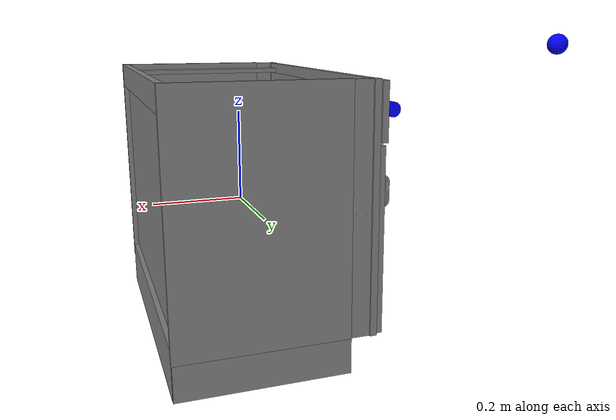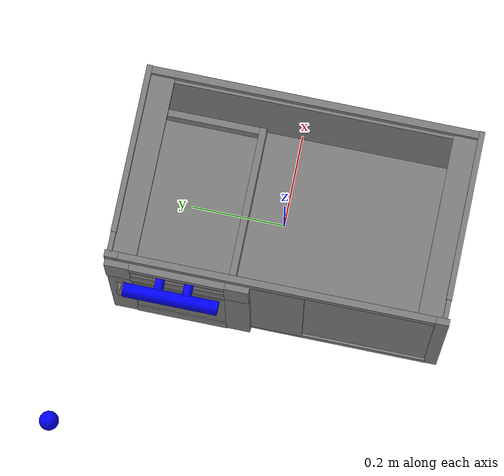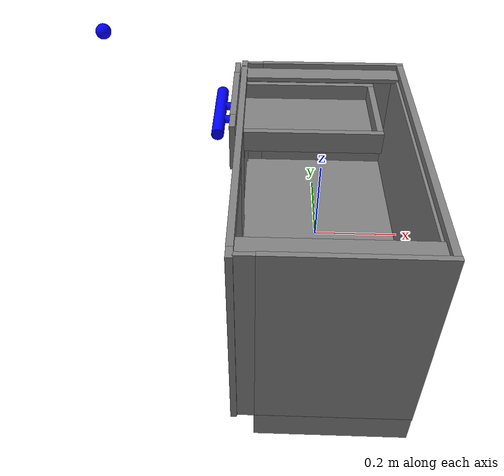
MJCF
<mujoco model="partnet_3cdabe258ed67a144da5feafe6f1c8fc">
    <compiler angle="radian" />
    <size njmax="500" nconmax="100" />
    <asset>
        <mesh name="convex-51" file="convex-51.stl" scale="0.5 0.5 0.5" />
        <mesh name="convex-46" file="convex-46.stl" scale="0.5 0.5 0.5" />
        <mesh name="convex-47" file="convex-47.stl" scale="0.5 0.5 0.5" />
        <mesh name="convex-45" file="convex-45.stl" scale="0.5 0.5 0.5" />
        <mesh name="convex-48" file="convex-48.stl" scale="0.5 0.5 0.5" />
        <mesh name="convex-50" file="convex-50.stl" scale="0.5 0.5 0.5" />
        <mesh name="convex-52" file="convex-52.stl" scale="0.5 0.5 0.5" />
        <mesh name="convex-42" file="convex-42.stl" scale="0.5 0.5 0.5" />
        <mesh name="convex-38" file="convex-38.stl" scale="0.5 0.5 0.5" />
        <mesh name="convex-39" file="convex-39.stl" scale="0.5 0.5 0.5" />
        <mesh name="convex-36" file="convex-36.stl" scale="0.5 0.5 0.5" />
        <mesh name="convex-37" file="convex-37.stl" scale="0.5 0.5 0.5" />
        <mesh name="convex-41" file="convex-41.stl" scale="0.5 0.5 0.5" />
        <mesh name="convex-28" file="convex-28.stl" scale="0.5 0.5 0.5" />
        <mesh name="convex-27" file="convex-27.stl" scale="0.5 0.5 0.5" />
        <mesh name="convex-32" file="convex-32.stl" scale="0.5 0.5 0.5" />
        <mesh name="convex-34" file="convex-34.stl" scale="0.5 0.5 0.5" />
        <mesh name="convex-33" file="convex-33.stl" scale="0.5 0.5 0.5" />
        <mesh name="convex-31" file="convex-31.stl" scale="0.5 0.5 0.5" />
        <mesh name="convex-30" file="convex-30.stl" scale="0.5 0.5 0.5" />
        <mesh name="convex-43" file="convex-43.stl" scale="0.5 0.5 0.5" />
        <mesh name="convex-2" file="convex-2.stl" scale="0.5 0.5 0.5" />
        <mesh name="convex-16" file="convex-16.stl" scale="0.5 0.5 0.5" />
        <mesh name="convex-15" file="convex-15.stl" scale="0.5 0.5 0.5" />
        <mesh name="convex-12" file="convex-12.stl" scale="0.5 0.5 0.5" />
        <mesh name="convex-11" file="convex-11.stl" scale="0.5 0.5 0.5" />
        <mesh name="convex-6" file="convex-6.stl" scale="0.5 0.5 0.5" />
        <mesh name="convex-3" file="convex-3.stl" scale="0.5 0.5 0.5" />
        <mesh name="convex-8" file="convex-8.stl" scale="0.5 0.5 0.5" />
        <mesh name="convex-18" file="convex-18.stl" scale="0.5 0.5 0.5" />
        <mesh name="convex-9" file="convex-9.stl" scale="0.5 0.5 0.5" />
        <mesh name="convex-22" file="convex-22.stl" scale="0.5 0.5 0.5" />
        <mesh name="convex-5" file="convex-5.stl" scale="0.5 0.5 0.5" />
        <mesh name="convex-21" file="convex-21.stl" scale="0.5 0.5 0.5" />
        <mesh name="convex-7" file="convex-7.stl" scale="0.5 0.5 0.5" />
        <mesh name="convex-4" file="convex-4.stl" scale="0.5 0.5 0.5" />
        <mesh name="convex-23" file="convex-23.stl" scale="0.5 0.5 0.5" />
        <mesh name="convex-24" file="convex-24.stl" scale="0.5 0.5 0.5" />
        <mesh name="convex-53" file="convex-53.stl" scale="0.5 0.5 0.5" />
        <mesh name="convex-19" file="convex-19.stl" scale="0.5 0.5 0.5" />
        <mesh name="convex-13" file="convex-13.stl" scale="0.5 0.5 0.5" />
        <mesh name="convex-20" file="convex-20.stl" scale="0.5 0.5 0.5" />
        <mesh name="convex-17" file="convex-17.stl" scale="0.5 0.5 0.5" />
    </asset>
    <worldbody>
        <body>
        <body name="object">
            <body name="link" pos="0.0 0.0 0.0" quat="0 0 0 1">
                <geom quat="0.7073883 0 0 0.7068252" type="mesh" mesh="convex-2" group="0" />
                <geom quat="0.7073883 0 0 0.7068252" type="mesh" mesh="convex-16" group="0" />
                <geom quat="0.7073883 0 0 0.7068252" type="mesh" mesh="convex-15" group="0" />
                <geom quat="0.7073883 0 0 0.7068252" type="mesh" mesh="convex-12" group="0" />
                <geom quat="0.7073883 0 0 0.7068252" type="mesh" mesh="convex-11" group="0" />
                <geom quat="0.7073883 0 0 0.7068252" type="mesh" mesh="convex-6" group="0" />
                <geom quat="0.7073883 0 0 0.7068252" type="mesh" mesh="convex-3" group="0" />
                <geom quat="0.7073883 0 0 0.7068252" type="mesh" mesh="convex-8" group="0" />
                <geom quat="0.7073883 0 0 0.7068252" type="mesh" mesh="convex-18" group="0" />
                <geom quat="0.7073883 0 0 0.7068252" type="mesh" mesh="convex-9" group="0" />
                <geom quat="0.7073883 0 0 0.7068252" type="mesh" mesh="convex-22" group="0" />
                <geom quat="0.7073883 0 0 0.7068252" type="mesh" mesh="convex-5" group="0" />
                <geom quat="0.7073883 0 0 0.7068252" type="mesh" mesh="convex-21" group="0" />
                <geom quat="0.7073883 0 0 0.7068252" type="mesh" mesh="convex-7" group="0" />
                <geom quat="0.7073883 0 0 0.7068252" type="mesh" mesh="convex-4" group="0" />
                <geom quat="0.7073883 0 0 0.7068252" type="mesh" mesh="convex-23" group="0" name="bar-23" />
                <geom quat="0.7073883 0 0 0.7068252" type="mesh" mesh="convex-24" group="0" name="bar-24" />
                <geom quat="0.7073883 0 0 0.7068252" type="mesh" mesh="convex-53" group="0" />
                <geom quat="0.7073883 0 0 0.7068252" type="mesh" mesh="convex-19" group="0" />
                <geom quat="0.7073883 0 0 0.7068252" type="mesh" mesh="convex-13" group="0" />
                <geom quat="0.7073883 0 0 0.7068252" type="mesh" mesh="convex-20" group="0" />
                <geom quat="0.7073883 0 0 0.7068252" type="mesh" mesh="convex-17" group="0" />
                <geom quat="0.7073883 0 0 0.7068252" type="mesh" mesh="convex-51" group="0" />
                <geom quat="0.7073883 0 0 0.7068252" type="mesh" mesh="convex-46" group="0" name="bar-46" />
                <geom quat="0.7073883 0 0 0.7068252" type="mesh" mesh="convex-47" group="0" name="bar-47" />
                <geom quat="0.7073883 0 0 0.7068252" type="mesh" mesh="convex-45" group="0" name="bar-45" />
                <geom quat="0.7073883 0 0 0.7068252" type="mesh" mesh="convex-48" group="0" name="bar-48" />
                <geom quat="0.7073883 0 0 0.7068252" type="mesh" mesh="convex-50" group="0" name="bar-50" />
                <geom quat="0.7073883 0 0 0.7068252" type="mesh" mesh="convex-52" group="0" />
                <body name="link_0" pos="0.005 0.0 0.0" quat="0.7073883 0 0 0.7068252">
                    <inertial pos="-0.1854115 -0.0700315 0.221761" quat="0.503577 0.496329 -0.496172 0.503867" mass="11.7813" diaginertia="1.14787 0.80664 0.394266" />
                    <joint name="joint_0" pos="0.0 0.0 0.0" axis="0 -1 0" type="slide" limited="true" range="0.0 0.3" damping="1" frictionloss="1" />
                    <body name="foo">
                        <geom type="mesh" mesh="convex-42" group="0" name="panel" />
                        <geom type="mesh" mesh="convex-38" group="0" name="foo-38-panel" />
                        <geom type="mesh" mesh="convex-39" group="0" name="foo-39-panel" />
                        <geom type="mesh" mesh="convex-36" group="0" name="foo-36-panel" />
                        <geom type="mesh" mesh="convex-37" group="0" name="foo-37-panel" />
                        <geom type="mesh" mesh="convex-41" group="0" name="foo-41-panel" />
                        <geom type="mesh" mesh="convex-28" group="0" name="fo-28" />
                        <geom type="mesh" mesh="convex-27" group="0" name="fo-27" />
                        <geom type="mesh" mesh="convex-32" group="0" name="fo-32" />
                        <geom type="mesh" mesh="convex-34" group="0" name="fo-34" />
                        <geom type="mesh" mesh="convex-33" group="0" name="fo-33" />
                        <geom type="mesh" mesh="convex-31" group="0" name="fo-31" />

                        <body name="handle_body">
                            <geom type="cylinder" pos="-0.1916615 -0.2375 0.225" size=".015 .1 .015" euler="0 -1.57 0" group="0" rgba="0 0 1 1" name="handle" />
                            <geom type="cylinder" pos="-0.16 -0.2175 0.225" size=".01 .03 .01" euler="-1.57 0 0" group="0" rgba="0 0 1 1" name="handle-1" />
                            <geom type="cylinder" pos="-0.22 -0.2175 0.225" size=".01 .03 .01" euler="-1.57 0 0" group="0" rgba="0 0 1 1" name="handle-2" />
                            <site name="handle" pos="-0.370823 -0.55 0.35" size="0.02" rgba="0 0 1 1" />
                        </body>
                    </body>
                </body>
            </body>
        </body>
        <site name="bottom_site" pos="0 0 -0.3" rgba="0 0 0 0" size="0.005" />
        <site name="top_site" pos="0 0 0.3" rgba="0 0 0 0" size="0.005" />
        <site name="horizontal_radius_site" pos="0.3 0 0" rgba="0 0 0 0" size="0.1" />
    </body>
    </worldbody>
</mujoco>
